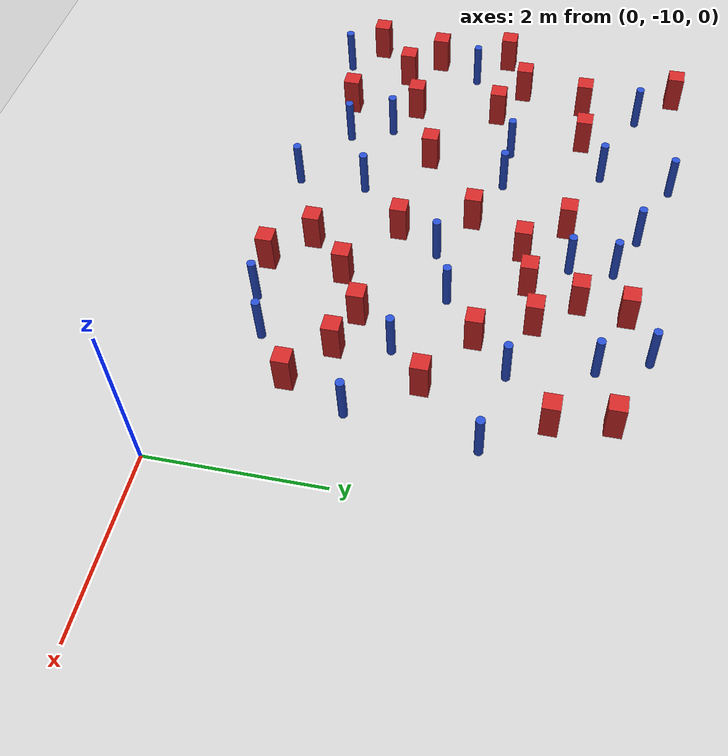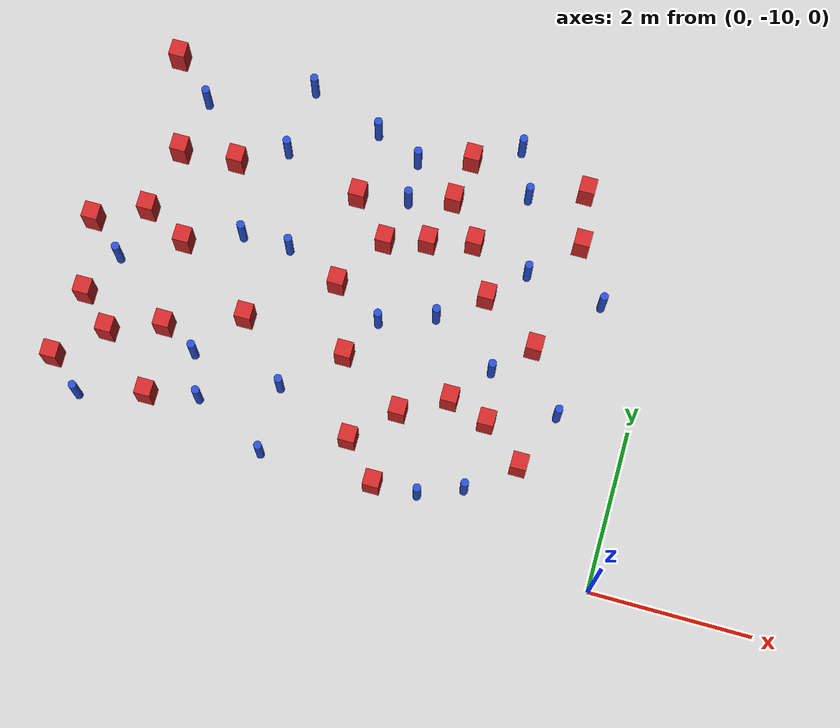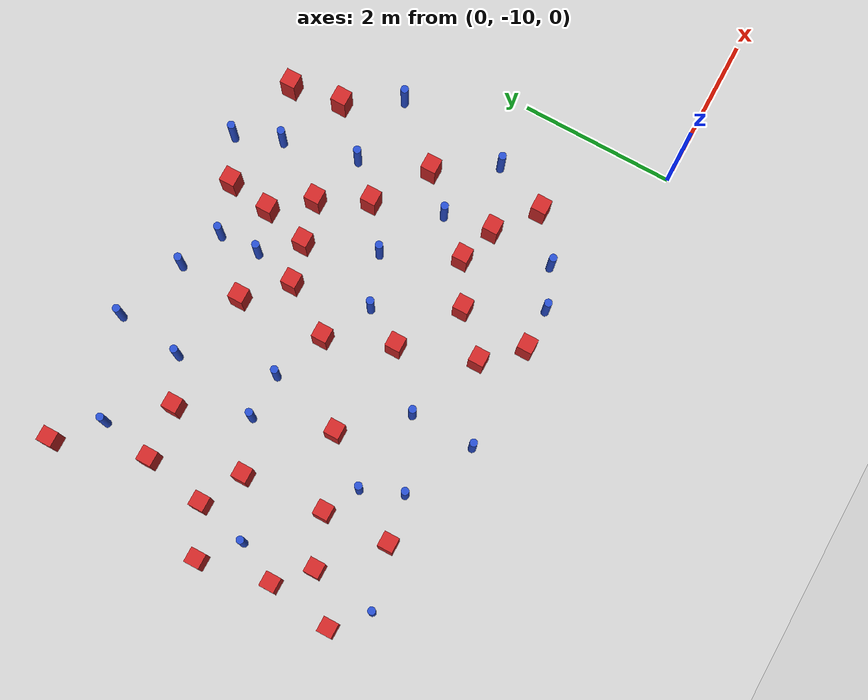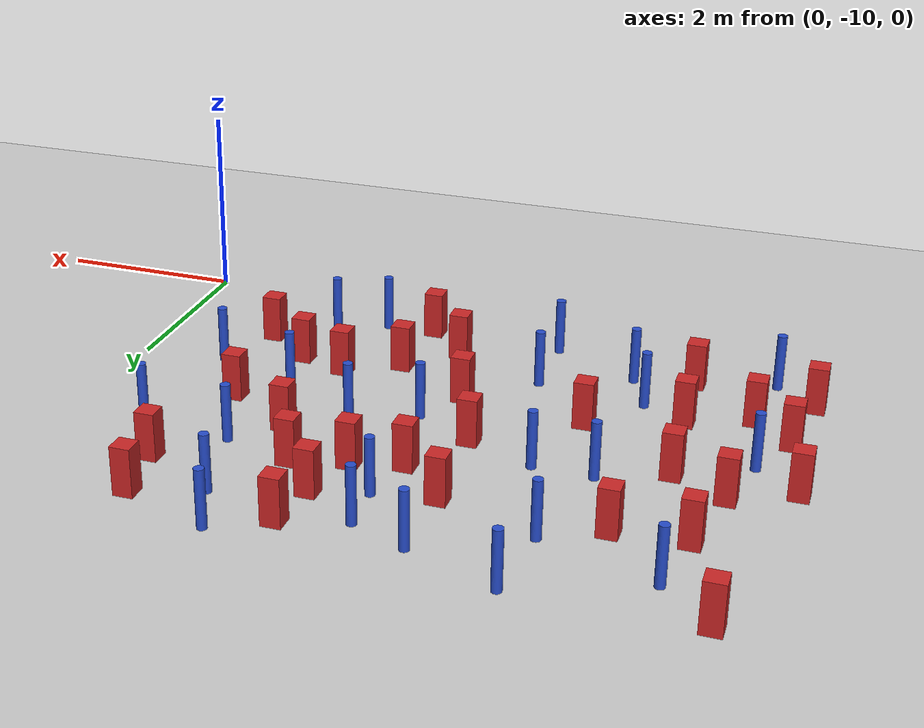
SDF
<sdf version="1.6">
 <world name="default">
  <model name="ground_plane">
   <static>1</static>
   <link name="link">
    <collision name="collision">
     <geometry><plane><normal>0 0 1</normal><size>100 100</size></plane></geometry>
     <surface><friction><ode><mu>100</mu><mu2>50</mu2></ode></friction></surface>
    </collision>
    <visual name="visual">
     <cast_shadows>0</cast_shadows>
     <geometry><plane><normal>0 0 1</normal><size>100 100</size></plane></geometry>
     <material>
      <ambient>1.0 1.0 1.0 1.0</ambient>
      <diffuse>0.8 0.8 0.8 1.0</diffuse>
      <specular>0.01 0.01 0.01 1.000000</specular>
     </material>
    </visual>
   </link>
  </model>
  <model name="square_post_obstacle6">
   <static>true</static>
   <pose>-6.57756571265 -4.88262852347 -6.11067671241e-07 -5.50515727128e-06 -8.79689657224e-07 2.37013304536e-05</pose>
   <link name="link">
    <pose>0 0 0.25 0 -0 0</pose>
    <inertial>
     <mass>100</mass>
     <inertia>
      <ixx>0.166667</ixx>
      <ixy>0</ixy>
      <ixz>0</ixz>
      <iyy>0.166667</iyy>
      <iyz>0</iyz>
      <izz>0.166667</izz>
     </inertia>
    </inertial>
    <collision name="collision"><geometry><box><size>.2 .2 .5</size></box></geometry></collision>
    <visual name="visual">
     <geometry><box><size>.2 .2 .5</size></box></geometry>
     <material>
      <script><name>Gazebo/Red</name><uri>file://media/materials/scripts/gazebo.material</uri></script>
     </material>
    </visual>
   </link>
  </model>
  <model name="pole_obstacle4">
   <static>true</static>
   <pose>-6.55046260767 -7.55333888679 -9.47619616065e-06 5.49618799737e-07 2.36310414037e-07 -1.55090534814e-07</pose>
   <link name="link">
    <pose>0 0 0.3 0 -0 0</pose>
    <inertial>
     <mass>1</mass>
     <inertia><ixx>0.145833</ixx><ixy>0</ixy><ixz>0</ixz><iyy>0.145833</iyy><iyz>0</iyz><izz>0.125</izz></inertia>
    </inertial>
    <collision name="collision">
     <geometry><cylinder><radius>0.05</radius><length>.6</length></cylinder></geometry>
    </collision>
    <visual name="visual">
     <geometry><cylinder><radius>0.05</radius><length>.6</length></cylinder></geometry>
     <material>
      <script><name>Gazebo/Blue</name><uri>file://media/materials/scripts/gazebo.material</uri></script>
     </material>
    </visual>
   </link>
  </model>
  <model name="square_post_obstacle9">
   <static>true</static>
   <pose>-6.99141399774 -7.1748597416 -6.11067671241e-07 -5.50515727128e-06 -8.79689657224e-07 2.37013304536e-05</pose>
   <link name="link">
    <pose>0 0 0.25 0 -0 0</pose>
    <inertial>
     <mass>100</mass>
     <inertia>
      <ixx>0.166667</ixx>
      <ixy>0</ixy>
      <ixz>0</ixz>
      <iyy>0.166667</iyy>
      <iyz>0</iyz>
      <izz>0.166667</izz>
     </inertia>
    </inertial>
    <collision name="collision"><geometry><box><size>.2 .2 .5</size></box></geometry></collision>
    <visual name="visual">
     <geometry><box><size>.2 .2 .5</size></box></geometry>
     <material>
      <script><name>Gazebo/Red</name><uri>file://media/materials/scripts/gazebo.material</uri></script>
     </material>
    </visual>
   </link>
  </model>
  <model name="square_post_obstacle10">
   <static>true</static>
   <pose>-5.72387415668 -9.10628945442 -6.11067671241e-07 -5.50515727128e-06 -8.79689657224e-07 2.37013304536e-05</pose>
   <link name="link">
    <pose>0 0 0.25 0 -0 0</pose>
    <inertial>
     <mass>100</mass>
     <inertia>
      <ixx>0.166667</ixx>
      <ixy>0</ixy>
      <ixz>0</ixz>
      <iyy>0.166667</iyy>
      <iyz>0</iyz>
      <izz>0.166667</izz>
     </inertia>
    </inertial>
    <collision name="collision"><geometry><box><size>.2 .2 .5</size></box></geometry></collision>
    <visual name="visual">
     <geometry><box><size>.2 .2 .5</size></box></geometry>
     <material>
      <script><name>Gazebo/Red</name><uri>file://media/materials/scripts/gazebo.material</uri></script>
     </material>
    </visual>
   </link>
  </model>
  <model name="square_post_obstacle11">
   <static>true</static>
   <pose>-6.20760111522 -6.0575947766 -6.11067671241e-07 -5.50515727128e-06 -8.79689657224e-07 2.37013304536e-05</pose>
   <link name="link">
    <pose>0 0 0.25 0 -0 0</pose>
    <inertial>
     <mass>100</mass>
     <inertia>
      <ixx>0.166667</ixx>
      <ixy>0</ixy>
      <ixz>0</ixz>
      <iyy>0.166667</iyy>
      <iyz>0</iyz>
      <izz>0.166667</izz>
     </inertia>
    </inertial>
    <collision name="collision"><geometry><box><size>.2 .2 .5</size></box></geometry></collision>
    <visual name="visual">
     <geometry><box><size>.2 .2 .5</size></box></geometry>
     <material>
      <script><name>Gazebo/Red</name><uri>file://media/materials/scripts/gazebo.material</uri></script>
     </material>
    </visual>
   </link>
  </model>
  <model name="square_post_obstacle12">
   <static>true</static>
   <pose>-6.81024050324 -8.09693723005 -6.11067671241e-07 -5.50515727128e-06 -8.79689657224e-07 2.37013304536e-05</pose>
   <link name="link">
    <pose>0 0 0.25 0 -0 0</pose>
    <inertial>
     <mass>100</mass>
     <inertia>
      <ixx>0.166667</ixx>
      <ixy>0</ixy>
      <ixz>0</ixz>
      <iyy>0.166667</iyy>
      <iyz>0</iyz>
      <izz>0.166667</izz>
     </inertia>
    </inertial>
    <collision name="collision"><geometry><box><size>.2 .2 .5</size></box></geometry></collision>
    <visual name="visual">
     <geometry><box><size>.2 .2 .5</size></box></geometry>
     <material>
      <script><name>Gazebo/Red</name><uri>file://media/materials/scripts/gazebo.material</uri></script>
     </material>
    </visual>
   </link>
  </model>
  <model name="square_post_obstacle14">
   <static>true</static>
   <pose>-5.83653238779 -7.16018827022 -6.11067671241e-07 -5.50515727128e-06 -8.79689657224e-07 2.37013304536e-05</pose>
   <link name="link">
    <pose>0 0 0.25 0 -0 0</pose>
    <inertial>
     <mass>100</mass>
     <inertia>
      <ixx>0.166667</ixx>
      <ixy>0</ixy>
      <ixz>0</ixz>
      <iyy>0.166667</iyy>
      <iyz>0</iyz>
      <izz>0.166667</izz>
     </inertia>
    </inertial>
    <collision name="collision"><geometry><box><size>.2 .2 .5</size></box></geometry></collision>
    <visual name="visual">
     <geometry><box><size>.2 .2 .5</size></box></geometry>
     <material>
      <script><name>Gazebo/Red</name><uri>file://media/materials/scripts/gazebo.material</uri></script>
     </material>
    </visual>
   </link>
  </model>
  <model name="square_post_obstacle26">
   <static>true</static>
   <pose>-3.55222555123 -8.01928020186 -6.11067671241e-07 -5.50515727128e-06 -8.79689657224e-07 2.37013304536e-05</pose>
   <link name="link">
    <pose>0 0 0.25 0 -0 0</pose>
    <inertial>
     <mass>100</mass>
     <inertia>
      <ixx>0.166667</ixx>
      <ixy>0</ixy>
      <ixz>0</ixz>
      <iyy>0.166667</iyy>
      <iyz>0</iyz>
      <izz>0.166667</izz>
     </inertia>
    </inertial>
    <collision name="collision"><geometry><box><size>.2 .2 .5</size></box></geometry></collision>
    <visual name="visual">
     <geometry><box><size>.2 .2 .5</size></box></geometry>
     <material>
      <script><name>Gazebo/Red</name><uri>file://media/materials/scripts/gazebo.material</uri></script>
     </material>
    </visual>
   </link>
  </model>
  <model name="pole_obstacle23">
   <static>true</static>
   <pose>-4.57035062365 -6.90346252421 -9.47619616065e-06 5.49618799737e-07 2.36310414037e-07 -1.55090534814e-07</pose>
   <link name="link">
    <pose>0 0 0.3 0 -0 0</pose>
    <inertial>
     <mass>1</mass>
     <inertia><ixx>0.145833</ixx><ixy>0</ixy><ixz>0</ixz><iyy>0.145833</iyy><iyz>0</iyz><izz>0.125</izz></inertia>
    </inertial>
    <collision name="collision">
     <geometry><cylinder><radius>0.05</radius><length>.6</length></cylinder></geometry>
    </collision>
    <visual name="visual">
     <geometry><cylinder><radius>0.05</radius><length>.6</length></cylinder></geometry>
     <material>
      <script><name>Gazebo/Blue</name><uri>file://media/materials/scripts/gazebo.material</uri></script>
     </material>
    </visual>
   </link>
  </model>
  <model name="pole_obstacle26">
   <static>true</static>
   <pose>-5.31681408724 -8.47605154295 -9.47619616065e-06 5.49618799737e-07 2.36310414065e-07 -1.55090534796e-07</pose>
   <link name="link">
    <pose>0 0 0.3 0 -0 0</pose>
    <inertial>
     <mass>1</mass>
     <inertia><ixx>0.145833</ixx><ixy>0</ixy><ixz>0</ixz><iyy>0.145833</iyy><iyz>0</iyz><izz>0.125</izz></inertia>
    </inertial>
    <collision name="collision">
     <geometry><cylinder><radius>0.05</radius><length>.6</length></cylinder></geometry>
    </collision>
    <visual name="visual">
     <geometry><cylinder><radius>0.05</radius><length>.6</length></cylinder></geometry>
     <material>
      <script><name>Gazebo/Blue</name><uri>file://media/materials/scripts/gazebo.material</uri></script>
     </material>
    </visual>
   </link>
  </model>
  <model name="pole_obstacle33">
   <static>true</static>
   <pose>-4.83155795482 -4.84272580236 -9.47619616065e-06 5.49618799737e-07 2.36310414037e-07 -1.55090534814e-07</pose>
   <link name="link">
    <pose>0 0 0.3 0 -0 0</pose>
    <inertial>
     <mass>1</mass>
     <inertia><ixx>0.145833</ixx><ixy>0</ixy><ixz>0</ixz><iyy>0.145833</iyy><iyz>0</iyz><izz>0.125</izz></inertia>
    </inertial>
    <collision name="collision">
     <geometry><cylinder><radius>0.05</radius><length>.6</length></cylinder></geometry>
    </collision>
    <visual name="visual">
     <geometry><cylinder><radius>0.05</radius><length>.6</length></cylinder></geometry>
     <material>
      <script><name>Gazebo/Blue</name><uri>file://media/materials/scripts/gazebo.material</uri></script>
     </material>
    </visual>
   </link>
  </model>
  <model name="pole_obstacle39">
   <static>true</static>
   <pose>-1.90964179417 -5.4983938985 -9.47619616065e-06 5.49618799737e-07 2.36310414061e-07 -1.550905348e-07</pose>
   <link name="link">
    <pose>0 0 0.3 0 -0 0</pose>
    <inertial>
     <mass>1</mass>
     <inertia><ixx>0.145833</ixx><ixy>0</ixy><ixz>0</ixz><iyy>0.145833</iyy><iyz>0</iyz><izz>0.125</izz></inertia>
    </inertial>
    <collision name="collision">
     <geometry><cylinder><radius>0.05</radius><length>.6</length></cylinder></geometry>
    </collision>
    <visual name="visual">
     <geometry><cylinder><radius>0.05</radius><length>.6</length></cylinder></geometry>
     <material>
      <script><name>Gazebo/Blue</name><uri>file://media/materials/scripts/gazebo.material</uri></script>
     </material>
    </visual>
   </link>
  </model>
  <model name="square_post_obstacle41">
   <static>true</static>
   <pose>-3.22644817653 -8.99877664331 -6.11067671241e-07 -5.50515727128e-06 -8.79689657224e-07 2.37013304536e-05</pose>
   <link name="link">
    <pose>0 0 0.25 0 -0 0</pose>
    <inertial>
     <mass>100</mass>
     <inertia>
      <ixx>0.166667</ixx>
      <ixy>0</ixy>
      <ixz>0</ixz>
      <iyy>0.166667</iyy>
      <iyz>0</iyz>
      <izz>0.166667</izz>
     </inertia>
    </inertial>
    <collision name="collision"><geometry><box><size>.2 .2 .5</size></box></geometry></collision>
    <visual name="visual">
     <geometry><box><size>.2 .2 .5</size></box></geometry>
     <material>
      <script><name>Gazebo/Red</name><uri>file://media/materials/scripts/gazebo.material</uri></script>
     </material>
    </visual>
   </link>
  </model>
  <model name="square_post_obstacle48">
   <static>true</static>
   <pose>-1.36244111933 -7.33045170916 -6.11067671241e-07 -5.50515727128e-06 -8.79689657224e-07 2.37013304536e-05</pose>
   <link name="link">
    <pose>0 0 0.25 0 -0 0</pose>
    <inertial>
     <mass>100</mass>
     <inertia>
      <ixx>0.166667</ixx>
      <ixy>0</ixy>
      <ixz>0</ixz>
      <iyy>0.166667</iyy>
      <iyz>0</iyz>
      <izz>0.166667</izz>
     </inertia>
    </inertial>
    <collision name="collision"><geometry><box><size>.2 .2 .5</size></box></geometry></collision>
    <visual name="visual">
     <geometry><box><size>.2 .2 .5</size></box></geometry>
     <material>
      <script><name>Gazebo/Red</name><uri>file://media/materials/scripts/gazebo.material</uri></script>
     </material>
    </visual>
   </link>
  </model>
  <model name="square_post_obstacle63">
   <static>true</static>
   <pose>-2.08164971228 -6.86837948079 -6.11067671241e-07 -5.50515727128e-06 -8.79689657224e-07 2.37013304536e-05</pose>
   <link name="link">
    <pose>0 0 0.25 0 -0 0</pose>
    <inertial>
     <mass>100</mass>
     <inertia>
      <ixx>0.166667</ixx>
      <ixy>0</ixy>
      <ixz>0</ixz>
      <iyy>0.166667</iyy>
      <iyz>0</iyz>
      <izz>0.166667</izz>
     </inertia>
    </inertial>
    <collision name="collision"><geometry><box><size>.2 .2 .5</size></box></geometry></collision>
    <visual name="visual">
     <geometry><box><size>.2 .2 .5</size></box></geometry>
     <material>
      <script><name>Gazebo/Red</name><uri>file://media/materials/scripts/gazebo.material</uri></script>
     </material>
    </visual>
   </link>
  </model>
  <model name="pole_obstacle65">
   <static>true</static>
   <pose>-3.34772686053 -5.41388096059 -9.47619616065e-06 5.49618799738e-07 2.3631041406e-07 -1.55090534801e-07</pose>
   <link name="link">
    <pose>0 0 0.3 0 -0 0</pose>
    <inertial>
     <mass>1</mass>
     <inertia><ixx>0.145833</ixx><ixy>0</ixy><ixz>0</ixz><iyy>0.145833</iyy><iyz>0</iyz><izz>0.125</izz></inertia>
    </inertial>
    <collision name="collision">
     <geometry><cylinder><radius>0.05</radius><length>.6</length></cylinder></geometry>
    </collision>
    <visual name="visual">
     <geometry><cylinder><radius>0.05</radius><length>.6</length></cylinder></geometry>
     <material>
      <script><name>Gazebo/Blue</name><uri>file://media/materials/scripts/gazebo.material</uri></script>
     </material>
    </visual>
   </link>
  </model>
  <model name="pole_obstacle69">
   <static>true</static>
   <pose>-3.91702903695 -5.17881100299 -9.47619616065e-06 5.49618799738e-07 2.3631041406e-07 -1.55090534801e-07</pose>
   <link name="link">
    <pose>0 0 0.3 0 -0 0</pose>
    <inertial>
     <mass>1</mass>
     <inertia><ixx>0.145833</ixx><ixy>0</ixy><ixz>0</ixz><iyy>0.145833</iyy><iyz>0</iyz><izz>0.125</izz></inertia>
    </inertial>
    <collision name="collision">
     <geometry><cylinder><radius>0.05</radius><length>.6</length></cylinder></geometry>
    </collision>
    <visual name="visual">
     <geometry><cylinder><radius>0.05</radius><length>.6</length></cylinder></geometry>
     <material>
      <script><name>Gazebo/Blue</name><uri>file://media/materials/scripts/gazebo.material</uri></script>
     </material>
    </visual>
   </link>
  </model>
  <model name="pole_obstacle74">
   <static>true</static>
   <pose>-6.07681685812 -5.34519548398 -9.47619616065e-06 5.49618799737e-07 2.36310414037e-07 -1.55090534814e-07</pose>
   <link name="link">
    <pose>0 0 0.3 0 -0 0</pose>
    <inertial>
     <mass>1</mass>
     <inertia><ixx>0.145833</ixx><ixy>0</ixy><ixz>0</ixz><iyy>0.145833</iyy><iyz>0</iyz><izz>0.125</izz></inertia>
    </inertial>
    <collision name="collision">
     <geometry><cylinder><radius>0.05</radius><length>.6</length></cylinder></geometry>
    </collision>
    <visual name="visual">
     <geometry><cylinder><radius>0.05</radius><length>.6</length></cylinder></geometry>
     <material>
      <script><name>Gazebo/Blue</name><uri>file://media/materials/scripts/gazebo.material</uri></script>
     </material>
    </visual>
   </link>
  </model>
  <model name="pole_obstacle78">
   <static>true</static>
   <pose>-2.60666642798 -7.27161910632 -9.47619616065e-06 5.49618799738e-07 2.3631041406e-07 -1.55090534801e-07</pose>
   <link name="link">
    <pose>0 0 0.3 0 -0 0</pose>
    <inertial>
     <mass>1</mass>
     <inertia><ixx>0.145833</ixx><ixy>0</ixy><ixz>0</ixz><iyy>0.145833</iyy><iyz>0</iyz><izz>0.125</izz></inertia>
    </inertial>
    <collision name="collision">
     <geometry><cylinder><radius>0.05</radius><length>.6</length></cylinder></geometry>
    </collision>
    <visual name="visual">
     <geometry><cylinder><radius>0.05</radius><length>.6</length></cylinder></geometry>
     <material>
      <script><name>Gazebo/Blue</name><uri>file://media/materials/scripts/gazebo.material</uri></script>
     </material>
    </visual>
   </link>
  </model>
  <model name="square_post_obstacle78">
   <static>true</static>
   <pose>-3.93960212979 -6.03467510799 -6.11067671241e-07 -5.50515727128e-06 -8.79689657224e-07 2.37013304536e-05</pose>
   <link name="link">
    <pose>0 0 0.25 0 -0 0</pose>
    <inertial>
     <mass>100</mass>
     <inertia>
      <ixx>0.166667</ixx>
      <ixy>0</ixy>
      <ixz>0</ixz>
      <iyy>0.166667</iyy>
      <iyz>0</iyz>
      <izz>0.166667</izz>
     </inertia>
    </inertial>
    <collision name="collision"><geometry><box><size>.2 .2 .5</size></box></geometry></collision>
    <visual name="visual">
     <geometry><box><size>.2 .2 .5</size></box></geometry>
     <material>
      <script><name>Gazebo/Red</name><uri>file://media/materials/scripts/gazebo.material</uri></script>
     </material>
    </visual>
   </link>
  </model>
  <model name="square_post_obstacle80">
   <static>true</static>
   <pose>-6.37895484889 -6.87996109916 -6.11067671241e-07 -5.50515727128e-06 -8.79689657224e-07 2.37013304536e-05</pose>
   <link name="link">
    <pose>0 0 0.25 0 -0 0</pose>
    <inertial>
     <mass>100</mass>
     <inertia>
      <ixx>0.166667</ixx>
      <ixy>0</ixy>
      <ixz>0</ixz>
      <iyy>0.166667</iyy>
      <iyz>0</iyz>
      <izz>0.166667</izz>
     </inertia>
    </inertial>
    <collision name="collision"><geometry><box><size>.2 .2 .5</size></box></geometry></collision>
    <visual name="visual">
     <geometry><box><size>.2 .2 .5</size></box></geometry>
     <material>
      <script><name>Gazebo/Red</name><uri>file://media/materials/scripts/gazebo.material</uri></script>
     </material>
    </visual>
   </link>
  </model>
  <model name="square_post_obstacle84">
   <static>true</static>
   <pose>-5.50405486017 -5.9991004739 -6.11067671241e-07 -5.50515727128e-06 -8.79689657224e-07 2.37013304536e-05</pose>
   <link name="link">
    <pose>0 0 0.25 0 -0 0</pose>
    <inertial>
     <mass>100</mass>
     <inertia>
      <ixx>0.166667</ixx>
      <ixy>0</ixy>
      <ixz>0</ixz>
      <iyy>0.166667</iyy>
      <iyz>0</iyz>
      <izz>0.166667</izz>
     </inertia>
    </inertial>
    <collision name="collision"><geometry><box><size>.2 .2 .5</size></box></geometry></collision>
    <visual name="visual">
     <geometry><box><size>.2 .2 .5</size></box></geometry>
     <material>
      <script><name>Gazebo/Red</name><uri>file://media/materials/scripts/gazebo.material</uri></script>
     </material>
    </visual>
   </link>
  </model>
  <model name="square_post_obstacle86">
   <static>true</static>
   <pose>-1.12780428887 -5.91856966871 -6.11067671241e-07 -5.50515727128e-06 -8.79689657224e-07 2.37013304536e-05</pose>
   <link name="link">
    <pose>0 0 0.25 0 -0 0</pose>
    <inertial>
     <mass>100</mass>
     <inertia>
      <ixx>0.166667</ixx>
      <ixy>0</ixy>
      <ixz>0</ixz>
      <iyy>0.166667</iyy>
      <iyz>0</iyz>
      <izz>0.166667</izz>
     </inertia>
    </inertial>
    <collision name="collision"><geometry><box><size>.2 .2 .5</size></box></geometry></collision>
    <visual name="visual">
     <geometry><box><size>.2 .2 .5</size></box></geometry>
     <material>
      <script><name>Gazebo/Red</name><uri>file://media/materials/scripts/gazebo.material</uri></script>
     </material>
    </visual>
   </link>
  </model>
  <model name="square_post_obstacle88">
   <static>true</static>
   <pose>-1.17320984912 -8.77921419275 -6.11067671241e-07 -5.50515727128e-06 -8.79689657224e-07 2.37013304536e-05</pose>
   <link name="link">
    <pose>0 0 0.25 0 -0 0</pose>
    <inertial>
     <mass>100</mass>
     <inertia>
      <ixx>0.166667</ixx>
      <ixy>0</ixy>
      <ixz>0</ixz>
      <iyy>0.166667</iyy>
      <iyz>0</iyz>
      <izz>0.166667</izz>
     </inertia>
    </inertial>
    <collision name="collision"><geometry><box><size>.2 .2 .5</size></box></geometry></collision>
    <visual name="visual">
     <geometry><box><size>.2 .2 .5</size></box></geometry>
     <material>
      <script><name>Gazebo/Red</name><uri>file://media/materials/scripts/gazebo.material</uri></script>
     </material>
    </visual>
   </link>
  </model>
  <model name="square_post_obstacle90">
   <static>true</static>
   <pose>-2.18166259685 -8.21424397237 -6.11067671241e-07 -5.50515727128e-06 -8.79689657224e-07 2.37013304536e-05</pose>
   <link name="link">
    <pose>0 0 0.25 0 -0 0</pose>
    <inertial>
     <mass>100</mass>
     <inertia>
      <ixx>0.166667</ixx>
      <ixy>0</ixy>
      <ixz>0</ixz>
      <iyy>0.166667</iyy>
      <iyz>0</iyz>
      <izz>0.166667</izz>
     </inertia>
    </inertial>
    <collision name="collision"><geometry><box><size>.2 .2 .5</size></box></geometry></collision>
    <visual name="visual">
     <geometry><box><size>.2 .2 .5</size></box></geometry>
     <material>
      <script><name>Gazebo/Red</name><uri>file://media/materials/scripts/gazebo.material</uri></script>
     </material>
    </visual>
   </link>
  </model>
  <model name="pole_obstacle104">
   <static>true</static>
   <pose>-6.53157448757 -9.32462601538 -9.47619616065e-06 5.49618799737e-07 2.36310414065e-07 -1.55090534796e-07</pose>
   <link name="link">
    <pose>0 0 0.3 0 -0 0</pose>
    <inertial>
     <mass>1</mass>
     <inertia><ixx>0.145833</ixx><ixy>0</ixy><ixz>0</ixz><iyy>0.145833</iyy><iyz>0</iyz><izz>0.125</izz></inertia>
    </inertial>
    <collision name="collision">
     <geometry><cylinder><radius>0.05</radius><length>.6</length></cylinder></geometry>
    </collision>
    <visual name="visual">
     <geometry><cylinder><radius>0.05</radius><length>.6</length></cylinder></geometry>
     <material>
      <script><name>Gazebo/Blue</name><uri>file://media/materials/scripts/gazebo.material</uri></script>
     </material>
    </visual>
   </link>
  </model>
  <model name="pole_obstacle105">
   <static>true</static>
   <pose>-5.10539434955 -8.99658205535 -9.47619616065e-06 5.49618799737e-07 2.36310414065e-07 -1.55090534796e-07</pose>
   <link name="link">
    <pose>0 0 0.3 0 -0 0</pose>
    <inertial>
     <mass>1</mass>
     <inertia><ixx>0.145833</ixx><ixy>0</ixy><ixz>0</ixz><iyy>0.145833</iyy><iyz>0</iyz><izz>0.125</izz></inertia>
    </inertial>
    <collision name="collision">
     <geometry><cylinder><radius>0.05</radius><length>.6</length></cylinder></geometry>
    </collision>
    <visual name="visual">
     <geometry><cylinder><radius>0.05</radius><length>.6</length></cylinder></geometry>
     <material>
      <script><name>Gazebo/Blue</name><uri>file://media/materials/scripts/gazebo.material</uri></script>
     </material>
    </visual>
   </link>
  </model>
  <model name="pole_obstacle113">
   <static>true</static>
   <pose>-2.25723910527 -9.43283404654 -9.4761961606e-06 5.49618799729e-07 2.36310414e-07 -1.55090534824e-07</pose>
   <link name="link">
    <pose>0 0 0.3 0 -0 0</pose>
    <inertial>
     <mass>1</mass>
     <inertia><ixx>0.145833</ixx><ixy>0</ixy><ixz>0</ixz><iyy>0.145833</iyy><iyz>0</iyz><izz>0.125</izz></inertia>
    </inertial>
    <collision name="collision">
     <geometry><cylinder><radius>0.05</radius><length>.6</length></cylinder></geometry>
    </collision>
    <visual name="visual">
     <geometry><cylinder><radius>0.05</radius><length>.6</length></cylinder></geometry>
     <material>
      <script><name>Gazebo/Blue</name><uri>file://media/materials/scripts/gazebo.material</uri></script>
     </material>
    </visual>
   </link>
  </model>
  <model name="pole_obstacle116">
   <static>true</static>
   <pose>-1.67497869061 -6.45155477631 -9.47619616065e-06 5.49618799737e-07 2.36310414061e-07 -1.550905348e-07</pose>
   <link name="link">
    <pose>0 0 0.3 0 -0 0</pose>
    <inertial>
     <mass>1</mass>
     <inertia><ixx>0.145833</ixx><ixy>0</ixy><ixz>0</ixz><iyy>0.145833</iyy><iyz>0</iyz><izz>0.125</izz></inertia>
    </inertial>
    <collision name="collision">
     <geometry><cylinder><radius>0.05</radius><length>.6</length></cylinder></geometry>
    </collision>
    <visual name="visual">
     <geometry><cylinder><radius>0.05</radius><length>.6</length></cylinder></geometry>
     <material>
      <script><name>Gazebo/Blue</name><uri>file://media/materials/scripts/gazebo.material</uri></script>
     </material>
    </visual>
   </link>
  </model>
  <model name="square_post_obstacle104">
   <static>true</static>
   <pose>-2.74138328469 -8.52270620863 -6.11067671241e-07 -5.50515727128e-06 -8.79689657224e-07 2.37013304536e-05</pose>
   <link name="link">
    <pose>0 0 0.25 0 -0 0</pose>
    <inertial>
     <mass>100</mass>
     <inertia>
      <ixx>0.166667</ixx>
      <ixy>0</ixy>
      <ixz>0</ixz>
      <iyy>0.166667</iyy>
      <iyz>0</iyz>
      <izz>0.166667</izz>
     </inertia>
    </inertial>
    <collision name="collision"><geometry><box><size>.2 .2 .5</size></box></geometry></collision>
    <visual name="visual">
     <geometry><box><size>.2 .2 .5</size></box></geometry>
     <material>
      <script><name>Gazebo/Red</name><uri>file://media/materials/scripts/gazebo.material</uri></script>
     </material>
    </visual>
   </link>
  </model>
  <model name="pole_obstacle124">
   <static>true</static>
   <pose>-3.32603775199 -5.93714795594 -9.47619616065e-06 5.49618799738e-07 2.3631041406e-07 -1.55090534801e-07</pose>
   <link name="link">
    <pose>0 0 0.3 0 -0 0</pose>
    <inertial>
     <mass>1</mass>
     <inertia><ixx>0.145833</ixx><ixy>0</ixy><ixz>0</ixz><iyy>0.145833</iyy><iyz>0</iyz><izz>0.125</izz></inertia>
    </inertial>
    <collision name="collision">
     <geometry><cylinder><radius>0.05</radius><length>.6</length></cylinder></geometry>
    </collision>
    <visual name="visual">
     <geometry><cylinder><radius>0.05</radius><length>.6</length></cylinder></geometry>
     <material>
      <script><name>Gazebo/Blue</name><uri>file://media/materials/scripts/gazebo.material</uri></script>
     </material>
    </visual>
   </link>
  </model>
  <model name="square_post_obstacle121">
   <static>true</static>
   <pose>-2.78804787747 -5.77938269511 -6.11067671241e-07 -5.50515727128e-06 -8.79689657224e-07 2.37013304536e-05</pose>
   <link name="link">
    <pose>0 0 0.25 0 -0 0</pose>
    <inertial>
     <mass>100</mass>
     <inertia>
      <ixx>0.166667</ixx>
      <ixy>0</ixy>
      <ixz>0</ixz>
      <iyy>0.166667</iyy>
      <iyz>0</iyz>
      <izz>0.166667</izz>
     </inertia>
    </inertial>
    <collision name="collision"><geometry><box><size>.2 .2 .5</size></box></geometry></collision>
    <visual name="visual">
     <geometry><box><size>.2 .2 .5</size></box></geometry>
     <material>
      <script><name>Gazebo/Red</name><uri>file://media/materials/scripts/gazebo.material</uri></script>
     </material>
    </visual>
   </link>
  </model>
  <model name="square_post_obstacle128">
   <static>true</static>
   <pose>-5.75991165963 -8.23792328625 -6.11067671241e-07 -5.50515727128e-06 -8.79689657224e-07 2.37013304536e-05</pose>
   <link name="link">
    <pose>0 0 0.25 0 -0 0</pose>
    <inertial>
     <mass>100</mass>
     <inertia>
      <ixx>0.166667</ixx>
      <ixy>0</ixy>
      <ixz>0</ixz>
      <iyy>0.166667</iyy>
      <iyz>0</iyz>
      <izz>0.166667</izz>
     </inertia>
    </inertial>
    <collision name="collision"><geometry><box><size>.2 .2 .5</size></box></geometry></collision>
    <visual name="visual">
     <geometry><box><size>.2 .2 .5</size></box></geometry>
     <material>
      <script><name>Gazebo/Red</name><uri>file://media/materials/scripts/gazebo.material</uri></script>
     </material>
    </visual>
   </link>
  </model>
  <model name="square_post_obstacle146">
   <static>true</static>
   <pose>-2.7013036409 -5.21310640924 -6.11067671241e-07 -5.50515727128e-06 -8.79689657224e-07 2.37013304536e-05</pose>
   <link name="link">
    <pose>0 0 0.25 0 -0 0</pose>
    <inertial>
     <mass>100</mass>
     <inertia>
      <ixx>0.166667</ixx>
      <ixy>0</ixy>
      <ixz>0</ixz>
      <iyy>0.166667</iyy>
      <iyz>0</iyz>
      <izz>0.166667</izz>
     </inertia>
    </inertial>
    <collision name="collision"><geometry><box><size>.2 .2 .5</size></box></geometry></collision>
    <visual name="visual">
     <geometry><box><size>.2 .2 .5</size></box></geometry>
     <material>
      <script><name>Gazebo/Red</name><uri>file://media/materials/scripts/gazebo.material</uri></script>
     </material>
    </visual>
   </link>
  </model>
  <model name="pole_obstacle156">
   <static>true</static>
   <pose>-4.93292450154 -5.70843676376 -9.47619616065e-06 5.49618799737e-07 2.36310414037e-07 -1.55090534814e-07</pose>
   <link name="link">
    <pose>0 0 0.3 0 -0 0</pose>
    <inertial>
     <mass>1</mass>
     <inertia><ixx>0.145833</ixx><ixy>0</ixy><ixz>0</ixz><iyy>0.145833</iyy><iyz>0</iyz><izz>0.125</izz></inertia>
    </inertial>
    <collision name="collision">
     <geometry><cylinder><radius>0.05</radius><length>.6</length></cylinder></geometry>
    </collision>
    <visual name="visual">
     <geometry><cylinder><radius>0.05</radius><length>.6</length></cylinder></geometry>
     <material>
      <script><name>Gazebo/Blue</name><uri>file://media/materials/scripts/gazebo.material</uri></script>
     </material>
    </visual>
   </link>
  </model>
  <model name="pole_obstacle157">
   <static>true</static>
   <pose>-4.1971121398 -8.6039189541 -9.47619616065e-06 5.49618799737e-07 2.36310414065e-07 -1.55090534796e-07</pose>
   <link name="link">
    <pose>0 0 0.3 0 -0 0</pose>
    <inertial>
     <mass>1</mass>
     <inertia><ixx>0.145833</ixx><ixy>0</ixy><ixz>0</ixz><iyy>0.145833</iyy><iyz>0</iyz><izz>0.125</izz></inertia>
    </inertial>
    <collision name="collision">
     <geometry><cylinder><radius>0.05</radius><length>.6</length></cylinder></geometry>
    </collision>
    <visual name="visual">
     <geometry><cylinder><radius>0.05</radius><length>.6</length></cylinder></geometry>
     <material>
      <script><name>Gazebo/Blue</name><uri>file://media/materials/scripts/gazebo.material</uri></script>
     </material>
    </visual>
   </link>
  </model>
  <model name="square_post_obstacle160">
   <static>true</static>
   <pose>-4.84101458043 -7.88235043686 -6.11067671241e-07 -5.50515727128e-06 -8.79689657224e-07 2.37013304536e-05</pose>
   <link name="link">
    <pose>0 0 0.25 0 -0 0</pose>
    <inertial>
     <mass>100</mass>
     <inertia>
      <ixx>0.166667</ixx>
      <ixy>0</ixy>
      <ixz>0</ixz>
      <iyy>0.166667</iyy>
      <iyz>0</iyz>
      <izz>0.166667</izz>
     </inertia>
    </inertial>
    <collision name="collision"><geometry><box><size>.2 .2 .5</size></box></geometry></collision>
    <visual name="visual">
     <geometry><box><size>.2 .2 .5</size></box></geometry>
     <material>
      <script><name>Gazebo/Red</name><uri>file://media/materials/scripts/gazebo.material</uri></script>
     </material>
    </visual>
   </link>
  </model>
  <model name="square_post_obstacle166">
   <static>true</static>
   <pose>-6.41124366731 -8.47841926785 -6.11067671241e-07 -5.50515727128e-06 -8.79689657224e-07 2.37013304536e-05</pose>
   <link name="link">
    <pose>0 0 0.25 0 -0 0</pose>
    <inertial>
     <mass>100</mass>
     <inertia>
      <ixx>0.166667</ixx>
      <ixy>0</ixy>
      <ixz>0</ixz>
      <iyy>0.166667</iyy>
      <iyz>0</iyz>
      <izz>0.166667</izz>
     </inertia>
    </inertial>
    <collision name="collision"><geometry><box><size>.2 .2 .5</size></box></geometry></collision>
    <visual name="visual">
     <geometry><box><size>.2 .2 .5</size></box></geometry>
     <material>
      <script><name>Gazebo/Red</name><uri>file://media/materials/scripts/gazebo.material</uri></script>
     </material>
    </visual>
   </link>
  </model>
  <model name="square_post_obstacle168">
   <static>true</static>
   <pose>-3.88190435387 -7.17573204142 -6.11067671241e-07 -5.50515727128e-06 -8.79689657224e-07 2.37013304536e-05</pose>
   <link name="link">
    <pose>0 0 0.25 0 -0 0</pose>
    <inertial>
     <mass>100</mass>
     <inertia>
      <ixx>0.166667</ixx>
      <ixy>0</ixy>
      <ixz>0</ixz>
      <iyy>0.166667</iyy>
      <iyz>0</iyz>
      <izz>0.166667</izz>
     </inertia>
    </inertial>
    <collision name="collision"><geometry><box><size>.2 .2 .5</size></box></geometry></collision>
    <visual name="visual">
     <geometry><box><size>.2 .2 .5</size></box></geometry>
     <material>
      <script><name>Gazebo/Red</name><uri>file://media/materials/scripts/gazebo.material</uri></script>
     </material>
    </visual>
   </link>
  </model>
  <model name="square_post_obstacle169">
   <static>true</static>
   <pose>-1.68419458659 -8.37100857705 -6.11067671241e-07 -5.50515727128e-06 -8.79689657224e-07 2.37013304536e-05</pose>
   <link name="link">
    <pose>0 0 0.25 0 -0 0</pose>
    <inertial>
     <mass>100</mass>
     <inertia>
      <ixx>0.166667</ixx>
      <ixy>0</ixy>
      <ixz>0</ixz>
      <iyy>0.166667</iyy>
      <iyz>0</iyz>
      <izz>0.166667</izz>
     </inertia>
    </inertial>
    <collision name="collision"><geometry><box><size>.2 .2 .5</size></box></geometry></collision>
    <visual name="visual">
     <geometry><box><size>.2 .2 .5</size></box></geometry>
     <material>
      <script><name>Gazebo/Red</name><uri>file://media/materials/scripts/gazebo.material</uri></script>
     </material>
    </visual>
   </link>
  </model>
  <model name="pole_obstacle179">
   <static>true</static>
   <pose>-5.16944941346 -6.891929565 -9.47619616065e-06 5.49618799737e-07 2.36310414037e-07 -1.55090534814e-07</pose>
   <link name="link">
    <pose>0 0 0.3 0 -0 0</pose>
    <inertial>
     <mass>1</mass>
     <inertia><ixx>0.145833</ixx><ixy>0</ixy><ixz>0</ixz><iyy>0.145833</iyy><iyz>0</iyz><izz>0.125</izz></inertia>
    </inertial>
    <collision name="collision">
     <geometry><cylinder><radius>0.05</radius><length>.6</length></cylinder></geometry>
    </collision>
    <visual name="visual">
     <geometry><cylinder><radius>0.05</radius><length>.6</length></cylinder></geometry>
     <material>
      <script><name>Gazebo/Blue</name><uri>file://media/materials/scripts/gazebo.material</uri></script>
     </material>
    </visual>
   </link>
  </model>
  <model name="pole_obstacle182">
   <static>true</static>
   <pose>-3.27151388436 -7.5127092079 -9.4761961606e-06 5.49618799729e-07 2.36310414006e-07 -1.55090534822e-07</pose>
   <link name="link">
    <pose>0 0 0.3 0 -0 0</pose>
    <inertial>
     <mass>1</mass>
     <inertia><ixx>0.145833</ixx><ixy>0</ixy><ixz>0</ixz><iyy>0.145833</iyy><iyz>0</iyz><izz>0.125</izz></inertia>
    </inertial>
    <collision name="collision">
     <geometry><cylinder><radius>0.05</radius><length>.6</length></cylinder></geometry>
    </collision>
    <visual name="visual">
     <geometry><cylinder><radius>0.05</radius><length>.6</length></cylinder></geometry>
     <material>
      <script><name>Gazebo/Blue</name><uri>file://media/materials/scripts/gazebo.material</uri></script>
     </material>
    </visual>
   </link>
  </model>
  <model name="pole_obstacle183">
   <static>true</static>
   <pose>-1.78678754724 -7.74543800911 -9.47619616065e-06 5.49618799737e-07 2.36310414061e-07 -1.550905348e-07</pose>
   <link name="link">
    <pose>0 0 0.3 0 -0 0</pose>
    <inertial>
     <mass>1</mass>
     <inertia><ixx>0.145833</ixx><ixy>0</ixy><ixz>0</ixz><iyy>0.145833</iyy><iyz>0</iyz><izz>0.125</izz></inertia>
    </inertial>
    <collision name="collision">
     <geometry><cylinder><radius>0.05</radius><length>.6</length></cylinder></geometry>
    </collision>
    <visual name="visual">
     <geometry><cylinder><radius>0.05</radius><length>.6</length></cylinder></geometry>
     <material>
      <script><name>Gazebo/Blue</name><uri>file://media/materials/scripts/gazebo.material</uri></script>
     </material>
    </visual>
   </link>
  </model>
  <model name="square_post_obstacle173">
   <static>true</static>
   <pose>-2.95357746985 -6.38077439167 -6.11067671241e-07 -5.50515727128e-06 -8.79689657224e-07 2.37013304536e-05</pose>
   <link name="link">
    <pose>0 0 0.25 0 -0 0</pose>
    <inertial>
     <mass>100</mass>
     <inertia>
      <ixx>0.166667</ixx>
      <ixy>0</ixy>
      <ixz>0</ixz>
      <iyy>0.166667</iyy>
      <iyz>0</iyz>
      <izz>0.166667</izz>
     </inertia>
    </inertial>
    <collision name="collision"><geometry><box><size>.2 .2 .5</size></box></geometry></collision>
    <visual name="visual">
     <geometry><box><size>.2 .2 .5</size></box></geometry>
     <material>
      <script><name>Gazebo/Red</name><uri>file://media/materials/scripts/gazebo.material</uri></script>
     </material>
    </visual>
   </link>
  </model>
  <model name="square_post_obstacle176">
   <static>true</static>
   <pose>-1.2356242203 -5.25322754383 -6.11067671241e-07 -5.50515727128e-06 -8.79689657224e-07 2.37013304536e-05</pose>
   <link name="link">
    <pose>0 0 0.25 0 -0 0</pose>
    <inertial>
     <mass>100</mass>
     <inertia>
      <ixx>0.166667</ixx>
      <ixy>0</ixy>
      <ixz>0</ixz>
      <iyy>0.166667</iyy>
      <iyz>0</iyz>
      <izz>0.166667</izz>
     </inertia>
    </inertial>
    <collision name="collision"><geometry><box><size>.2 .2 .5</size></box></geometry></collision>
    <visual name="visual">
     <geometry><box><size>.2 .2 .5</size></box></geometry>
     <material>
      <script><name>Gazebo/Red</name><uri>file://media/materials/scripts/gazebo.material</uri></script>
     </material>
    </visual>
   </link>
  </model>
  <model name="square_post_obstacle191">
   <static>true</static>
   <pose>-6.9477681688 -8.95620972562 -6.11067671241e-07 -5.50515727128e-06 -8.79689657224e-07 2.37013304536e-05</pose>
   <link name="link">
    <pose>0 0 0.25 0 -0 0</pose>
    <inertial>
     <mass>100</mass>
     <inertia>
      <ixx>0.166667</ixx>
      <ixy>0</ixy>
      <ixz>0</ixz>
      <iyy>0.166667</iyy>
      <iyz>0</iyz>
      <izz>0.166667</izz>
     </inertia>
    </inertial>
    <collision name="collision"><geometry><box><size>.2 .2 .5</size></box></geometry></collision>
    <visual name="visual">
     <geometry><box><size>.2 .2 .5</size></box></geometry>
     <material>
      <script><name>Gazebo/Red</name><uri>file://media/materials/scripts/gazebo.material</uri></script>
     </material>
    </visual>
   </link>
  </model>
  <model name="square_post_obstacle202">
   <static>true</static>
   <pose>-3.46679803757 -6.5120559646 -6.11067671241e-07 -5.50515727128e-06 -8.79689657224e-07 2.37013304536e-05</pose>
   <link name="link">
    <pose>0 0 0.25 0 -0 0</pose>
    <inertial>
     <mass>100</mass>
     <inertia>
      <ixx>0.166667</ixx>
      <ixy>0</ixy>
      <ixz>0</ixz>
      <iyy>0.166667</iyy>
      <iyz>0</iyz>
      <izz>0.166667</izz>
     </inertia>
    </inertial>
    <collision name="collision"><geometry><box><size>.2 .2 .5</size></box></geometry></collision>
    <visual name="visual">
     <geometry><box><size>.2 .2 .5</size></box></geometry>
     <material>
      <script><name>Gazebo/Red</name><uri>file://media/materials/scripts/gazebo.material</uri></script>
     </material>
    </visual>
   </link>
  </model>
  <model name="square_post_obstacle203">
   <static>true</static>
   <pose>-2.80215638584 -9.44488199834 -6.11067671241e-07 -5.50515727128e-06 -8.79689657224e-07 2.37013304536e-05</pose>
   <link name="link">
    <pose>0 0 0.25 0 -0 0</pose>
    <inertial>
     <mass>100</mass>
     <inertia>
      <ixx>0.166667</ixx>
      <ixy>0</ixy>
      <ixz>0</ixz>
      <iyy>0.166667</iyy>
      <iyz>0</iyz>
      <izz>0.166667</izz>
     </inertia>
    </inertial>
    <collision name="collision"><geometry><box><size>.2 .2 .5</size></box></geometry></collision>
    <visual name="visual">
     <geometry><box><size>.2 .2 .5</size></box></geometry>
     <material>
      <script><name>Gazebo/Red</name><uri>file://media/materials/scripts/gazebo.material</uri></script>
     </material>
    </visual>
   </link>
  </model>
  <model name="pole_obstacle196">
   <static>true</static>
   <pose>-1.73163666585 -9.22453199067 -9.47619616065e-06 5.49618799737e-07 2.36310414046e-07 -1.55090534809e-07</pose>
   <link name="link">
    <pose>0 0 0.3 0 -0 0</pose>
    <inertial>
     <mass>1</mass>
     <inertia><ixx>0.145833</ixx><ixy>0</ixy><ixz>0</ixz><iyy>0.145833</iyy><iyz>0</iyz><izz>0.125</izz></inertia>
    </inertial>
    <collision name="collision">
     <geometry><cylinder><radius>0.05</radius><length>.6</length></cylinder></geometry>
    </collision>
    <visual name="visual">
     <geometry><cylinder><radius>0.05</radius><length>.6</length></cylinder></geometry>
     <material>
      <script><name>Gazebo/Blue</name><uri>file://media/materials/scripts/gazebo.material</uri></script>
     </material>
    </visual>
   </link>
  </model>
  <model name="square_post_obstacle204">
   <static>true</static>
   <pose>-2.39963160565 -6.24494599728 -6.11067671241e-07 -5.50515727128e-06 -8.79689657224e-07 2.37013304536e-05</pose>
   <link name="link">
    <pose>0 0 0.25 0 -0 0</pose>
    <inertial>
     <mass>100</mass>
     <inertia>
      <ixx>0.166667</ixx>
      <ixy>0</ixy>
      <ixz>0</ixz>
      <iyy>0.166667</iyy>
      <iyz>0</iyz>
      <izz>0.166667</izz>
     </inertia>
    </inertial>
    <collision name="collision"><geometry><box><size>.2 .2 .5</size></box></geometry></collision>
    <visual name="visual">
     <geometry><box><size>.2 .2 .5</size></box></geometry>
     <material>
      <script><name>Gazebo/Red</name><uri>file://media/materials/scripts/gazebo.material</uri></script>
     </material>
    </visual>
   </link>
  </model>
  <model name="pole_obstacle199">
   <static>true</static>
   <pose>-4.2033220809 -9.44167765043 -9.47619616065e-06 5.49618799737e-07 2.36310414065e-07 -1.55090534796e-07</pose>
   <link name="link">
    <pose>0 0 0.3 0 -0 0</pose>
    <inertial>
     <mass>1</mass>
     <inertia><ixx>0.145833</ixx><ixy>0</ixy><ixz>0</ixz><iyy>0.145833</iyy><iyz>0</iyz><izz>0.125</izz></inertia>
    </inertial>
    <collision name="collision">
     <geometry><cylinder><radius>0.05</radius><length>.6</length></cylinder></geometry>
    </collision>
    <visual name="visual">
     <geometry><cylinder><radius>0.05</radius><length>.6</length></cylinder></geometry>
     <material>
      <script><name>Gazebo/Blue</name><uri>file://media/materials/scripts/gazebo.material</uri></script>
     </material>
    </visual>
   </link>
  </model>
  <model name="pole_obstacle200">
   <static>true</static>
   <pose>-0.705278622637 -6.59369396865 -9.47619616065e-06 5.49618799737e-07 2.36310414065e-07 -1.55090534796e-07</pose>
   <link name="link">
    <pose>0 0 0.3 0 -0 0</pose>
    <inertial>
     <mass>1</mass>
     <inertia><ixx>0.145833</ixx><ixy>0</ixy><ixz>0</ixz><iyy>0.145833</iyy><iyz>0</iyz><izz>0.125</izz></inertia>
    </inertial>
    <collision name="collision">
     <geometry><cylinder><radius>0.05</radius><length>.6</length></cylinder></geometry>
    </collision>
    <visual name="visual">
     <geometry><cylinder><radius>0.05</radius><length>.6</length></cylinder></geometry>
     <material>
      <script><name>Gazebo/Blue</name><uri>file://media/materials/scripts/gazebo.material</uri></script>
     </material>
    </visual>
   </link>
  </model>
  <model name="pole_obstacle215">
   <static>true</static>
   <pose>-0.884850342745 -8.07207446488 -9.47619616065e-06 5.49618799737e-07 2.36310414038e-07 -1.55090534813e-07</pose>
   <link name="link">
    <pose>0 0 0.3 0 -0 0</pose>
    <inertial>
     <mass>1</mass>
     <inertia><ixx>0.145833</ixx><ixy>0</ixy><ixz>0</ixz><iyy>0.145833</iyy><iyz>0</iyz><izz>0.125</izz></inertia>
    </inertial>
    <collision name="collision">
     <geometry><cylinder><radius>0.05</radius><length>.6</length></cylinder></geometry>
    </collision>
    <visual name="visual">
     <geometry><cylinder><radius>0.05</radius><length>.6</length></cylinder></geometry>
     <material>
      <script><name>Gazebo/Blue</name><uri>file://media/materials/scripts/gazebo.material</uri></script>
     </material>
    </visual>
   </link>
  </model>
  <model name="pole_obstacle216">
   <static>true</static>
   <pose>-2.1427868227 -4.9198372037 -9.47619616065e-06 5.49618799738e-07 2.3631041406e-07 -1.55090534801e-07</pose>
   <link name="link">
    <pose>0 0 0.3 0 -0 0</pose>
    <inertial>
     <mass>1</mass>
     <inertia><ixx>0.145833</ixx><ixy>0</ixy><ixz>0</ixz><iyy>0.145833</iyy><iyz>0</iyz><izz>0.125</izz></inertia>
    </inertial>
    <collision name="collision">
     <geometry><cylinder><radius>0.05</radius><length>.6</length></cylinder></geometry>
    </collision>
    <visual name="visual">
     <geometry><cylinder><radius>0.05</radius><length>.6</length></cylinder></geometry>
     <material>
      <script><name>Gazebo/Blue</name><uri>file://media/materials/scripts/gazebo.material</uri></script>
     </material>
    </visual>
   </link>
  </model>
 </world>
</sdf>
